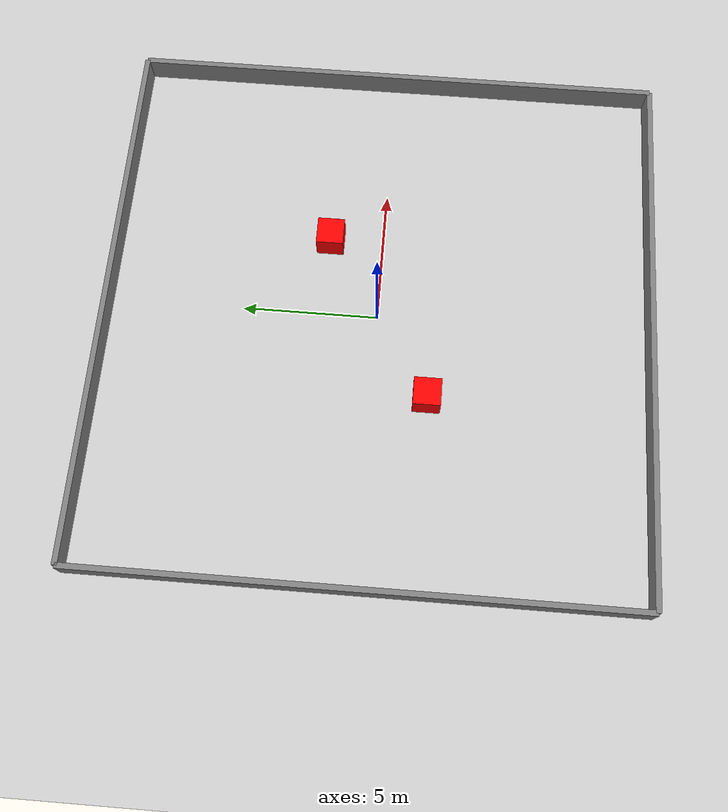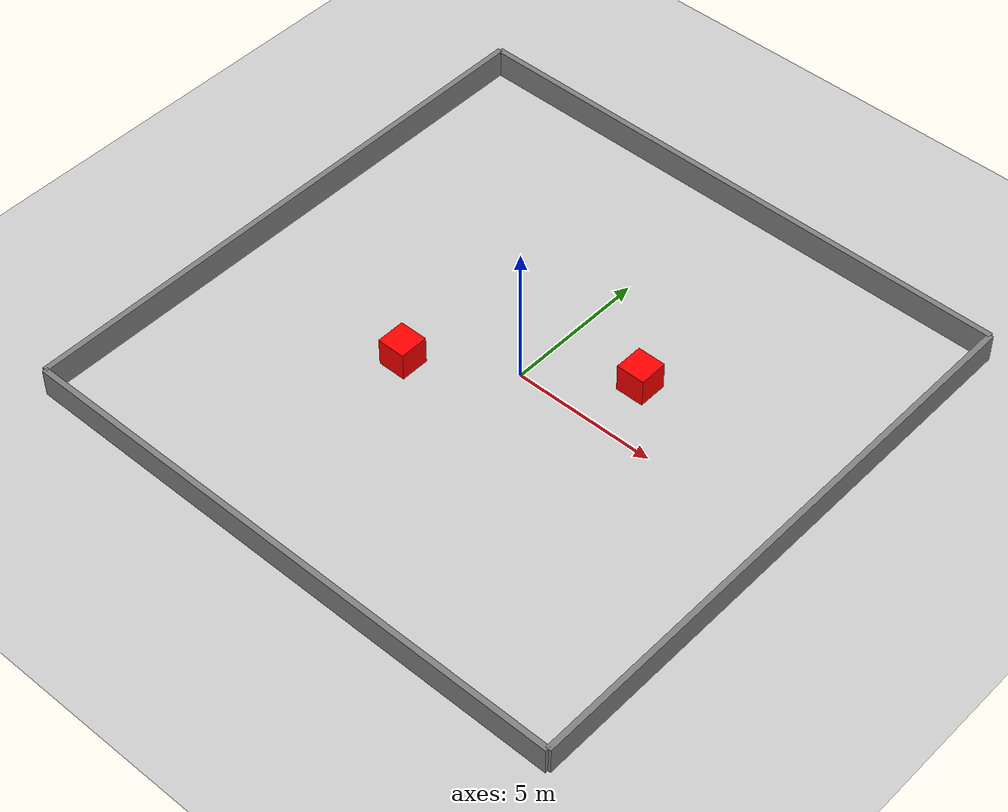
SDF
<?xml version="1.0" ?>
<sdf version="1.6">
  <world name="parkur">

    <!-- Güneş ışığı -->
    <include>
      <uri>model://sun</uri>
    </include>

    <!-- Zemin -->
    <include>
      <uri>model://ground_plane</uri>
    </include>

    <!-- Parkur duvarları — dikdörtgen alan 20x20 metre -->

    <!-- Kuzey duvar -->
    <model name="wall_north">
      <static>true</static>
      <pose>0 10 0.5 0 0 0</pose>
      <link name="link">
        <collision name="collision">
          <geometry><box><size>20 0.2 1</size></box></geometry>
        </collision>
        <visual name="visual">
          <geometry><box><size>20 0.2 1</size></box></geometry>
          <material><ambient>0.5 0.5 0.5 1</ambient></material>
        </visual>
      </link>
    </model>

    <!-- Güney duvar -->
    <model name="wall_south">
      <static>true</static>
      <pose>0 -10 0.5 0 0 0</pose>
      <link name="link">
        <collision name="collision">
          <geometry><box><size>20 0.2 1</size></box></geometry>
        </collision>
        <visual name="visual">
          <geometry><box><size>20 0.2 1</size></box></geometry>
          <material><ambient>0.5 0.5 0.5 1</ambient></material>
        </visual>
      </link>
    </model>

    <!-- Doğu duvar -->
    <model name="wall_east">
      <static>true</static>
      <pose>10 0 0.5 0 0 0</pose>
      <link name="link">
        <collision name="collision">
          <geometry><box><size>0.2 20 1</size></box></geometry>
        </collision>
        <visual name="visual">
          <geometry><box><size>0.2 20 1</size></box></geometry>
          <material><ambient>0.5 0.5 0.5 1</ambient></material>
        </visual>
      </link>
    </model>

    <!-- Batı duvar -->
    <model name="wall_west">
      <static>true</static>
      <pose>-10 0 0.5 0 0 0</pose>
      <link name="link">
        <collision name="collision">
          <geometry><box><size>0.2 20 1</size></box></geometry>
        </collision>
        <visual name="visual">
          <geometry><box><size>0.2 20 1</size></box></geometry>
          <material><ambient>0.5 0.5 0.5 1</ambient></material>
        </visual>
      </link>
    </model>

    <!-- Statik engel 1 -->
    <model name="engel_1">
      <static>true</static>
      <pose>3 2 0.5 0 0 0</pose>
      <link name="link">
        <collision name="collision">
          <geometry><box><size>1 1 1</size></box></geometry>
        </collision>
        <visual name="visual">
          <geometry><box><size>1 1 1</size></box></geometry>
          <material><ambient>1 0 0 1</ambient></material>
        </visual>
      </link>
    </model>

    <!-- Statik engel 2 -->
    <model name="engel_2">
      <static>true</static>
      <pose>-3 -2 0.5 0 0 0</pose>
      <link name="link">
        <collision name="collision">
          <geometry><box><size>1 1 1</size></box></geometry>
        </collision>
        <visual name="visual">
          <geometry><box><size>1 1 1</size></box></geometry>
          <material><ambient>1 0 0 1</ambient></material>
        </visual>
      </link>
    </model>

  </world>
</sdf>
